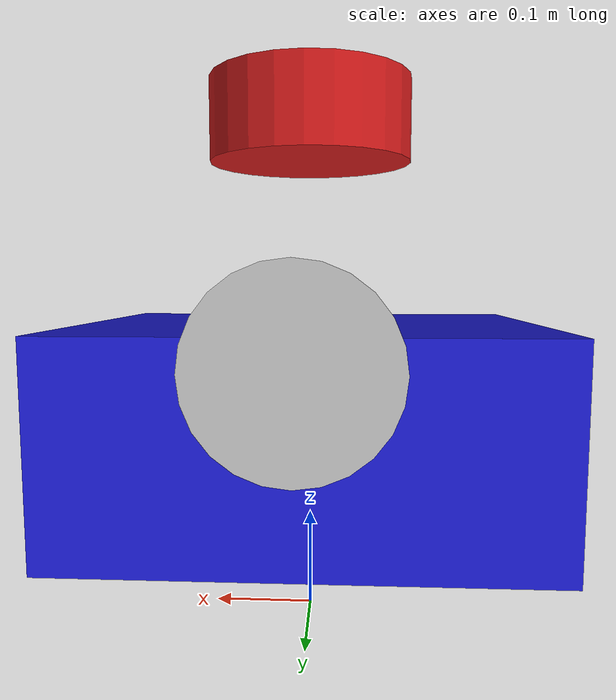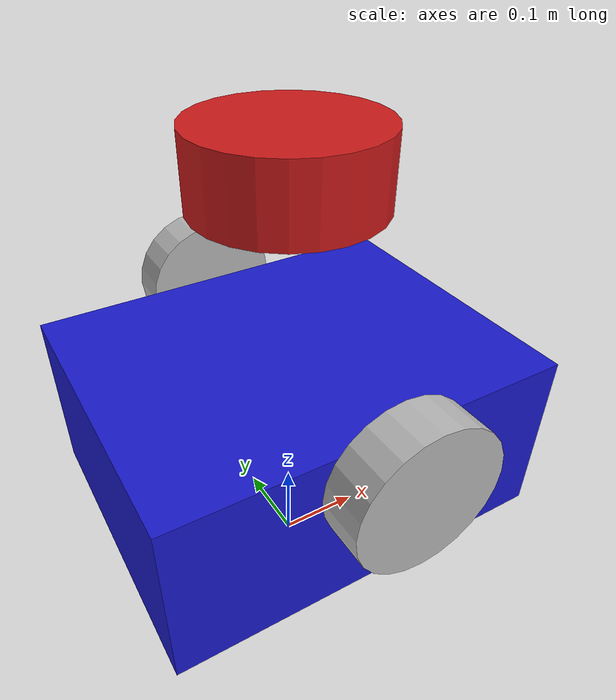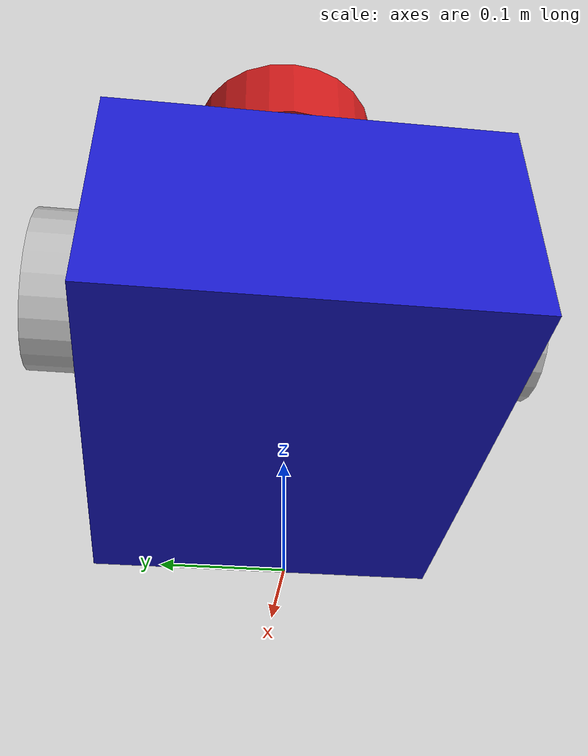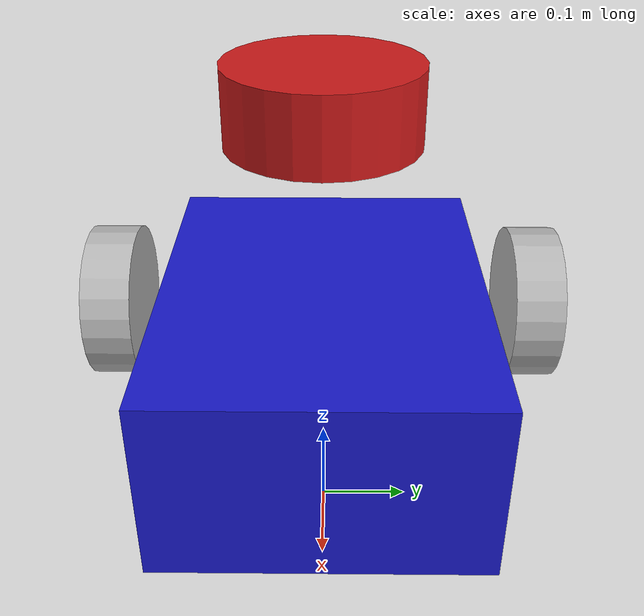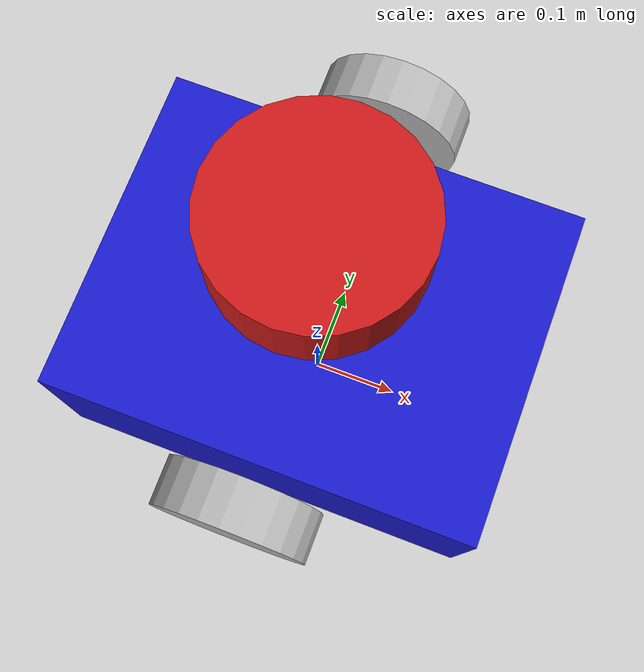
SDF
<?xml version="1.0" ?>
<sdf version="1.8">
  <model name="tfg_robot">
    <pose>0 0 0.2 0 0 0</pose>

    <link name="base_link">
      <inertial>
        <mass>5.0</mass>
        <inertia>
          <ixx>0.1</ixx>
          <iyy>0.1</iyy>
          <izz>0.1</izz>
        </inertia>
      </inertial>

      <collision name="base_collision">
        <geometry>
          <box>
            <size>0.45 0.35 0.2</size>
          </box>
        </geometry>
      </collision>

      <visual name="base_visual">
        <geometry>
          <box>
            <size>0.45 0.35 0.2</size>
          </box>
        </geometry>
        <material>
          <ambient>0.1 0.1 0.8 1</ambient>
          <diffuse>0.1 0.1 0.8 1</diffuse>
        </material>
      </visual>
    </link>

    <link name="left_wheel">
      <pose>0 0.22 0.08 1.5708 0 0</pose>
      <inertial>
        <mass>0.5</mass>
      </inertial>
      <collision name="collision">
        <geometry>
          <cylinder>
            <radius>0.08</radius>
            <length>0.05</length>
          </cylinder>
        </geometry>
      </collision>
      <visual name="visual">
        <geometry>
          <cylinder>
            <radius>0.08</radius>
            <length>0.05</length>
          </cylinder>
        </geometry>
      </visual>
    </link>

    <link name="right_wheel">
      <pose>0 -0.22 0.08 1.5708 0 0</pose>
      <inertial>
        <mass>0.5</mass>
      </inertial>
      <collision name="collision">
        <geometry>
          <cylinder>
            <radius>0.08</radius>
            <length>0.05</length>
          </cylinder>
        </geometry>
      </collision>
      <visual name="visual">
        <geometry>
          <cylinder>
            <radius>0.08</radius>
            <length>0.05</length>
          </cylinder>
        </geometry>
      </visual>
    </link>

    <joint name="left_wheel_joint" type="revolute">
      <parent>base_link</parent>
      <child>left_wheel</child>
      <axis>
        <xyz>1 0 1</xyz>
      </axis>
    </joint>

    <joint name="right_wheel_joint" type="revolute">
      <parent>base_link</parent>
      <child>right_wheel</child>
      <axis>
        <xyz>1 0 1</xyz>
      </axis>
    </joint>

    <link name="lidar_link">
      <pose>0 0 0.30 0 0 0</pose>

 <sensor name="hls_lfcd_lds" type="gpu_lidar">
  <always_on>true</always_on>
  <visualize>true</visualize>
  <update_rate>10</update_rate>
  <topic>scan</topic>

  <lidar>
    <scan>
      <horizontal>
        <samples>360</samples>
        <resolution>1</resolution>
        <min_angle>-3.14159</min_angle>
        <max_angle>3.14159</max_angle>
      </horizontal>
    </scan>

    <range>
      <min>0.12</min>
      <max>3.5</max>
      <resolution>0.01</resolution>
    </range>

    <noise>
      <type>gaussian</type>
      <mean>0.0</mean>
      <stddev>0.01</stddev>
    </noise>
  </lidar>
</sensor>

      <visual name="visual">
        <geometry>
          <cylinder>
            <radius>0.10</radius>
            <length>0.08</length>
          </cylinder>
        </geometry>
        <material>
          <ambient>0.8 0.1 0.1 1</ambient>
          <diffuse>0.8 0.1 0.1 1</diffuse>
        </material>
      </visual>
    </link>

    <joint name="lidar_joint" type="fixed">
      <parent>base_link</parent>
      <child>lidar_link</child>
    </joint>

    <plugin filename="libgz-sim-diff-drive-system.so" name="gz::sim::systems::DiffDrive">
      <left_joint>left_wheel_joint</left_joint>
      <right_joint>right_wheel_joint</right_joint>
      <wheel_separation>0.44</wheel_separation>
      <wheel_radius>0.08</wheel_radius>
      <odom_topic>odom</odom_topic>
      <cmd_vel_topic>cmd_vel</cmd_vel_topic>
    </plugin>

  </model>
</sdf>
